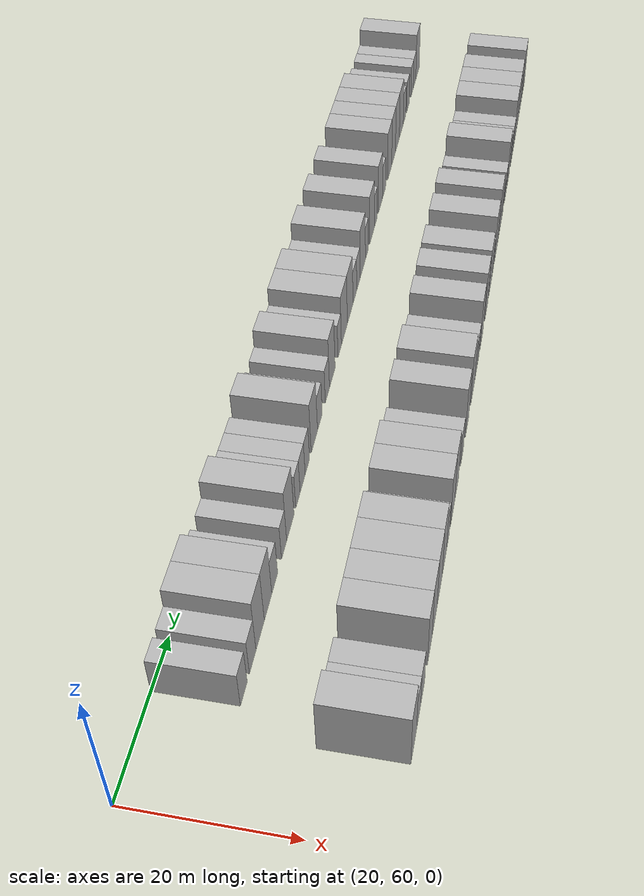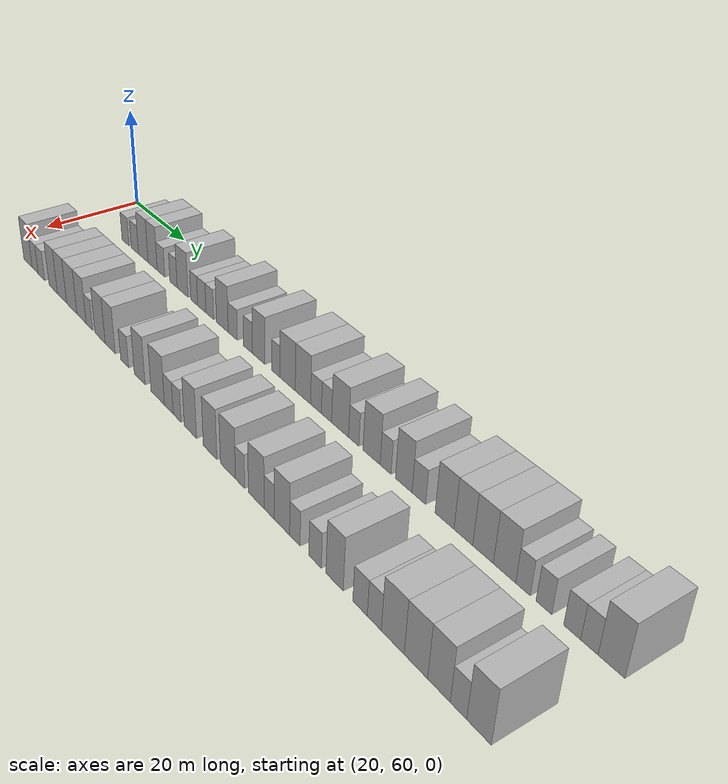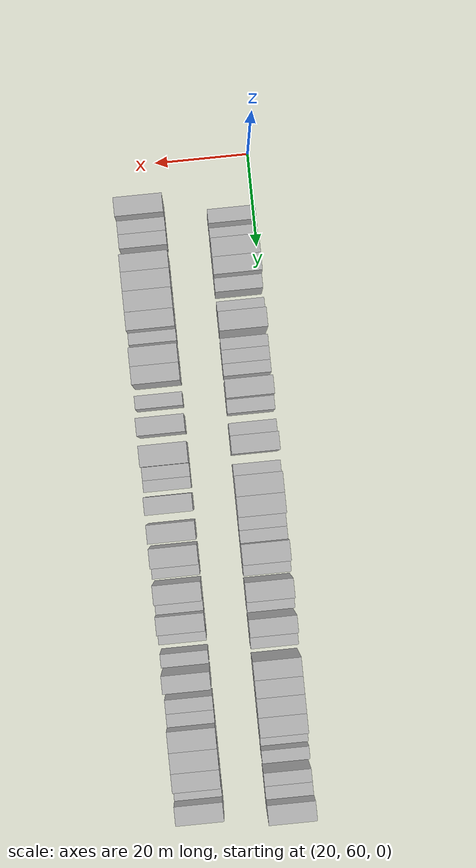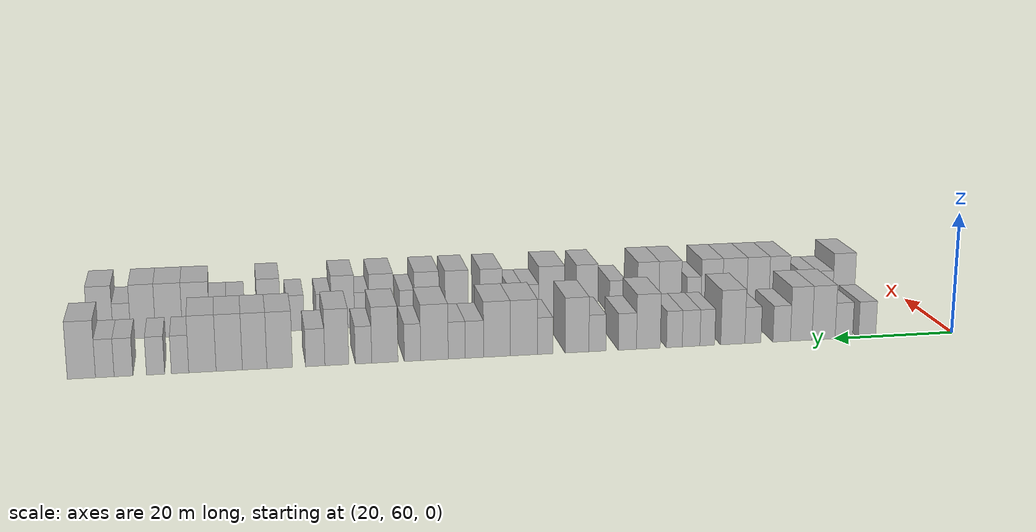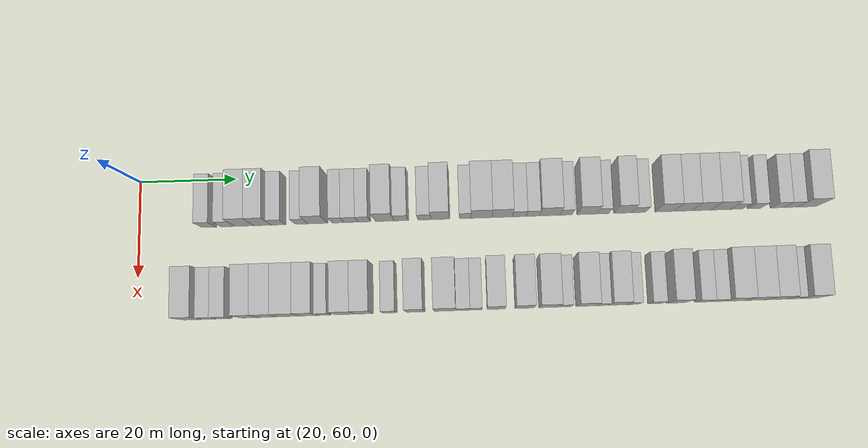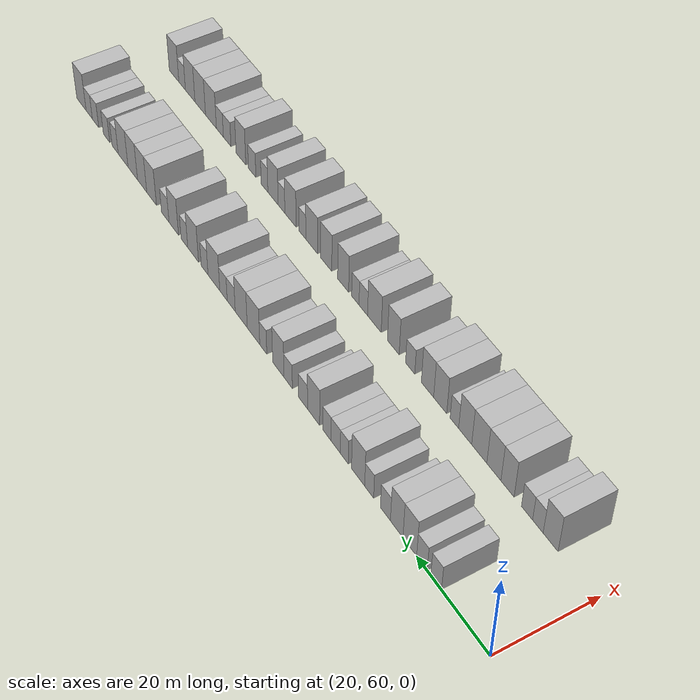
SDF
<sdf version="1.6">
 <world name="default">
  <model name="building_64">
   <static>1</static>
   <pose>25.0000 74.4920 0 0.000000 0.000000 0.000000</pose>
   <link name="link">
    <pose>0 0 3.00 0 0 0</pose>
    <collision name="collision"><geometry><box><size>10.0000 2.9386 6.0000</size></box></geometry></collision>
    <visual name="visual">
     <cast_shadows>0</cast_shadows>
     <geometry><box><size>10.0000 2.9386 6.0000</size></box></geometry>
     <material>
      <script>
       <uri>model://HANNAS_wall/materials/scripts</uri>
       <uri>model://HANNAS_wall/materials/textures</uri>
       <name>vrc/HANNAS_wall</name>
      </script>
     </material>
    </visual>
   </link>
  </model>
  <model name="building_65">
   <static>1</static>
   <pose>25.0000 78.4358 0 0.000000 0.000000 0.000000</pose>
   <link name="link">
    <pose>0 0 3.00 0 0 0</pose>
    <collision name="collision"><geometry><box><size>10.0000 2.9492 6.0000</size></box></geometry></collision>
    <visual name="visual">
     <cast_shadows>0</cast_shadows>
     <geometry><box><size>10.0000 2.9492 6.0000</size></box></geometry>
     <material>
      <script>
       <uri>model://HANNAS_wall/materials/scripts</uri>
       <uri>model://HANNAS_wall/materials/textures</uri>
       <name>vrc/HANNAS_wall</name>
      </script>
     </material>
    </visual>
   </link>
  </model>
  <model name="building_66">
   <static>1</static>
   <pose>25.0000 81.8568 0 0.000000 0.000000 0.000000</pose>
   <link name="link">
    <pose>0 0 4.50 0 0 0</pose>
    <collision name="collision"><geometry><box><size>10.0000 3.8927 9.0000</size></box></geometry></collision>
    <visual name="visual">
     <cast_shadows>0</cast_shadows>
     <geometry><box><size>10.0000 3.8927 9.0000</size></box></geometry>
     <material>
      <script>
       <uri>model://HANNAS_wall/materials/scripts</uri>
       <uri>model://HANNAS_wall/materials/textures</uri>
       <name>vrc/HANNAS_wall</name>
      </script>
     </material>
    </visual>
   </link>
  </model>
  <model name="building_67">
   <static>1</static>
   <pose>25.0000 85.6114 0 0.000000 0.000000 0.000000</pose>
   <link name="link">
    <pose>0 0 4.50 0 0 0</pose>
    <collision name="collision"><geometry><box><size>10.0000 3.6166 9.0000</size></box></geometry></collision>
    <visual name="visual">
     <cast_shadows>0</cast_shadows>
     <geometry><box><size>10.0000 3.6166 9.0000</size></box></geometry>
     <material>
      <script>
       <uri>model://HANNAS_wall/materials/scripts</uri>
       <uri>model://HANNAS_wall/materials/textures</uri>
       <name>vrc/HANNAS_wall</name>
      </script>
     </material>
    </visual>
   </link>
  </model>
  <model name="building_68">
   <static>1</static>
   <pose>25.0000 88.8825 0 0.000000 0.000000 0.000000</pose>
   <link name="link">
    <pose>0 0 3.00 0 0 0</pose>
    <collision name="collision"><geometry><box><size>10.0000 2.9257 6.0000</size></box></geometry></collision>
    <visual name="visual">
     <cast_shadows>0</cast_shadows>
     <geometry><box><size>10.0000 2.9257 6.0000</size></box></geometry>
     <material>
      <script>
       <uri>model://HANNAS_wall/materials/scripts</uri>
       <uri>model://HANNAS_wall/materials/textures</uri>
       <name>vrc/HANNAS_wall</name>
      </script>
     </material>
    </visual>
   </link>
  </model>
  <model name="building_69">
   <static>1</static>
   <pose>25.0000 93.6803 0 0.000000 0.000000 0.000000</pose>
   <link name="link">
    <pose>0 0 3.00 0 0 0</pose>
    <collision name="collision"><geometry><box><size>10.0000 2.6698 6.0000</size></box></geometry></collision>
    <visual name="visual">
     <cast_shadows>0</cast_shadows>
     <geometry><box><size>10.0000 2.6698 6.0000</size></box></geometry>
     <material>
      <script>
       <uri>model://HANNAS_wall/materials/scripts</uri>
       <uri>model://HANNAS_wall/materials/textures</uri>
       <name>vrc/HANNAS_wall</name>
      </script>
     </material>
    </visual>
   </link>
  </model>
  <model name="building_70">
   <static>1</static>
   <pose>25.0000 97.0109 0 0.000000 0.000000 0.000000</pose>
   <link name="link">
    <pose>0 0 4.50 0 0 0</pose>
    <collision name="collision"><geometry><box><size>10.0000 3.9914 9.0000</size></box></geometry></collision>
    <visual name="visual">
     <cast_shadows>0</cast_shadows>
     <geometry><box><size>10.0000 3.9914 9.0000</size></box></geometry>
     <material>
      <script>
       <uri>model://HANNAS_wall/materials/scripts</uri>
       <uri>model://HANNAS_wall/materials/textures</uri>
       <name>vrc/HANNAS_wall</name>
      </script>
     </material>
    </visual>
   </link>
  </model>
  <model name="building_71">
   <static>1</static>
   <pose>25.0000 101.2256 0 0.000000 0.000000 0.000000</pose>
   <link name="link">
    <pose>0 0 3.00 0 0 0</pose>
    <collision name="collision"><geometry><box><size>10.0000 2.4382 6.0000</size></box></geometry></collision>
    <visual name="visual">
     <cast_shadows>0</cast_shadows>
     <geometry><box><size>10.0000 2.4382 6.0000</size></box></geometry>
     <material>
      <script>
       <uri>model://HANNAS_wall/materials/scripts</uri>
       <uri>model://HANNAS_wall/materials/textures</uri>
       <name>vrc/HANNAS_wall</name>
      </script>
     </material>
    </visual>
   </link>
  </model>
  <model name="building_72">
   <static>1</static>
   <pose>25.0000 103.8931 0 0.000000 0.000000 0.000000</pose>
   <link name="link">
    <pose>0 0 3.00 0 0 0</pose>
    <collision name="collision"><geometry><box><size>10.0000 2.8968 6.0000</size></box></geometry></collision>
    <visual name="visual">
     <cast_shadows>0</cast_shadows>
     <geometry><box><size>10.0000 2.8968 6.0000</size></box></geometry>
     <material>
      <script>
       <uri>model://HANNAS_wall/materials/scripts</uri>
       <uri>model://HANNAS_wall/materials/textures</uri>
       <name>vrc/HANNAS_wall</name>
      </script>
     </material>
    </visual>
   </link>
  </model>
  <model name="building_73">
   <static>1</static>
   <pose>25.0000 106.6384 0 0.000000 0.000000 0.000000</pose>
   <link name="link">
    <pose>0 0 3.00 0 0 0</pose>
    <collision name="collision"><geometry><box><size>10.0000 2.5937 6.0000</size></box></geometry></collision>
    <visual name="visual">
     <cast_shadows>0</cast_shadows>
     <geometry><box><size>10.0000 2.5937 6.0000</size></box></geometry>
     <material>
      <script>
       <uri>model://HANNAS_wall/materials/scripts</uri>
       <uri>model://HANNAS_wall/materials/textures</uri>
       <name>vrc/HANNAS_wall</name>
      </script>
     </material>
    </visual>
   </link>
  </model>
  <model name="building_74">
   <static>1</static>
   <pose>25.0000 110.8752 0 0.000000 0.000000 0.000000</pose>
   <link name="link">
    <pose>0 0 4.50 0 0 0</pose>
    <collision name="collision"><geometry><box><size>10.0000 3.8799 9.0000</size></box></geometry></collision>
    <visual name="visual">
     <cast_shadows>0</cast_shadows>
     <geometry><box><size>10.0000 3.8799 9.0000</size></box></geometry>
     <material>
      <script>
       <uri>model://HANNAS_wall/materials/scripts</uri>
       <uri>model://HANNAS_wall/materials/textures</uri>
       <name>vrc/HANNAS_wall</name>
      </script>
     </material>
    </visual>
   </link>
  </model>
  <model name="building_75">
   <static>1</static>
   <pose>25.0000 114.2892 0 0.000000 0.000000 0.000000</pose>
   <link name="link">
    <pose>0 0 3.00 0 0 0</pose>
    <collision name="collision"><geometry><box><size>10.0000 2.9481 6.0000</size></box></geometry></collision>
    <visual name="visual">
     <cast_shadows>0</cast_shadows>
     <geometry><box><size>10.0000 2.9481 6.0000</size></box></geometry>
     <material>
      <script>
       <uri>model://HANNAS_wall/materials/scripts</uri>
       <uri>model://HANNAS_wall/materials/textures</uri>
       <name>vrc/HANNAS_wall</name>
      </script>
     </material>
    </visual>
   </link>
  </model>
  <model name="building_76">
   <static>1</static>
   <pose>25.0000 119.1432 0 0.000000 0.000000 0.000000</pose>
   <link name="link">
    <pose>0 0 3.00 0 0 0</pose>
    <collision name="collision"><geometry><box><size>10.0000 2.7599 6.0000</size></box></geometry></collision>
    <visual name="visual">
     <cast_shadows>0</cast_shadows>
     <geometry><box><size>10.0000 2.7599 6.0000</size></box></geometry>
     <material>
      <script>
       <uri>model://HANNAS_wall/materials/scripts</uri>
       <uri>model://HANNAS_wall/materials/textures</uri>
       <name>vrc/HANNAS_wall</name>
      </script>
     </material>
    </visual>
   </link>
  </model>
  <model name="building_77">
   <static>1</static>
   <pose>25.0000 122.4246 0 0.000000 0.000000 0.000000</pose>
   <link name="link">
    <pose>0 0 4.50 0 0 0</pose>
    <collision name="collision"><geometry><box><size>10.0000 3.8030 9.0000</size></box></geometry></collision>
    <visual name="visual">
     <cast_shadows>0</cast_shadows>
     <geometry><box><size>10.0000 3.8030 9.0000</size></box></geometry>
     <material>
      <script>
       <uri>model://HANNAS_wall/materials/scripts</uri>
       <uri>model://HANNAS_wall/materials/textures</uri>
       <name>vrc/HANNAS_wall</name>
      </script>
     </material>
    </visual>
   </link>
  </model>
  <model name="building_78">
   <static>1</static>
   <pose>25.0000 127.5338 0 0.000000 0.000000 0.000000</pose>
   <link name="link">
    <pose>0 0 3.00 0 0 0</pose>
    <collision name="collision"><geometry><box><size>10.0000 2.4152 6.0000</size></box></geometry></collision>
    <visual name="visual">
     <cast_shadows>0</cast_shadows>
     <geometry><box><size>10.0000 2.4152 6.0000</size></box></geometry>
     <material>
      <script>
       <uri>model://HANNAS_wall/materials/scripts</uri>
       <uri>model://HANNAS_wall/materials/textures</uri>
       <name>vrc/HANNAS_wall</name>
      </script>
     </material>
    </visual>
   </link>
  </model>
  <model name="building_79">
   <static>1</static>
   <pose>25.0000 130.9067 0 0.000000 0.000000 0.000000</pose>
   <link name="link">
    <pose>0 0 4.50 0 0 0</pose>
    <collision name="collision"><geometry><box><size>10.0000 4.3306 9.0000</size></box></geometry></collision>
    <visual name="visual">
     <cast_shadows>0</cast_shadows>
     <geometry><box><size>10.0000 4.3306 9.0000</size></box></geometry>
     <material>
      <script>
       <uri>model://HANNAS_wall/materials/scripts</uri>
       <uri>model://HANNAS_wall/materials/textures</uri>
       <name>vrc/HANNAS_wall</name>
      </script>
     </material>
    </visual>
   </link>
  </model>
  <model name="building_80">
   <static>1</static>
   <pose>25.0000 135.1905 0 0.000000 0.000000 0.000000</pose>
   <link name="link">
    <pose>0 0 4.50 0 0 0</pose>
    <collision name="collision"><geometry><box><size>10.0000 4.2369 9.0000</size></box></geometry></collision>
    <visual name="visual">
     <cast_shadows>0</cast_shadows>
     <geometry><box><size>10.0000 4.2369 9.0000</size></box></geometry>
     <material>
      <script>
       <uri>model://HANNAS_wall/materials/scripts</uri>
       <uri>model://HANNAS_wall/materials/textures</uri>
       <name>vrc/HANNAS_wall</name>
      </script>
     </material>
    </visual>
   </link>
  </model>
  <model name="building_81">
   <static>1</static>
   <pose>25.0000 138.7444 0 0.000000 0.000000 0.000000</pose>
   <link name="link">
    <pose>0 0 3.00 0 0 0</pose>
    <collision name="collision"><geometry><box><size>10.0000 2.8708 6.0000</size></box></geometry></collision>
    <visual name="visual">
     <cast_shadows>0</cast_shadows>
     <geometry><box><size>10.0000 2.8708 6.0000</size></box></geometry>
     <material>
      <script>
       <uri>model://HANNAS_wall/materials/scripts</uri>
       <uri>model://HANNAS_wall/materials/textures</uri>
       <name>vrc/HANNAS_wall</name>
      </script>
     </material>
    </visual>
   </link>
  </model>
  <model name="building_82">
   <static>1</static>
   <pose>25.0000 141.5231 0 0.000000 0.000000 0.000000</pose>
   <link name="link">
    <pose>0 0 3.00 0 0 0</pose>
    <collision name="collision"><geometry><box><size>10.0000 2.6867 6.0000</size></box></geometry></collision>
    <visual name="visual">
     <cast_shadows>0</cast_shadows>
     <geometry><box><size>10.0000 2.6867 6.0000</size></box></geometry>
     <material>
      <script>
       <uri>model://HANNAS_wall/materials/scripts</uri>
       <uri>model://HANNAS_wall/materials/textures</uri>
       <name>vrc/HANNAS_wall</name>
      </script>
     </material>
    </visual>
   </link>
  </model>
  <model name="building_83">
   <static>1</static>
   <pose>25.0000 145.0186 0 0.000000 0.000000 0.000000</pose>
   <link name="link">
    <pose>0 0 4.50 0 0 0</pose>
    <collision name="collision"><geometry><box><size>10.0000 4.3043 9.0000</size></box></geometry></collision>
    <visual name="visual">
     <cast_shadows>0</cast_shadows>
     <geometry><box><size>10.0000 4.3043 9.0000</size></box></geometry>
     <material>
      <script>
       <uri>model://HANNAS_wall/materials/scripts</uri>
       <uri>model://HANNAS_wall/materials/textures</uri>
       <name>vrc/HANNAS_wall</name>
      </script>
     </material>
    </visual>
   </link>
  </model>
  <model name="building_84">
   <static>1</static>
   <pose>25.0000 148.4384 0 0.000000 0.000000 0.000000</pose>
   <link name="link">
    <pose>0 0 3.00 0 0 0</pose>
    <collision name="collision"><geometry><box><size>10.0000 2.5353 6.0000</size></box></geometry></collision>
    <visual name="visual">
     <cast_shadows>0</cast_shadows>
     <geometry><box><size>10.0000 2.5353 6.0000</size></box></geometry>
     <material>
      <script>
       <uri>model://HANNAS_wall/materials/scripts</uri>
       <uri>model://HANNAS_wall/materials/textures</uri>
       <name>vrc/HANNAS_wall</name>
      </script>
     </material>
    </visual>
   </link>
  </model>
  <model name="building_85">
   <static>1</static>
   <pose>25.0000 152.7385 0 0.000000 0.000000 0.000000</pose>
   <link name="link">
    <pose>0 0 4.50 0 0 0</pose>
    <collision name="collision"><geometry><box><size>10.0000 4.0648 9.0000</size></box></geometry></collision>
    <visual name="visual">
     <cast_shadows>0</cast_shadows>
     <geometry><box><size>10.0000 4.0648 9.0000</size></box></geometry>
     <material>
      <script>
       <uri>model://HANNAS_wall/materials/scripts</uri>
       <uri>model://HANNAS_wall/materials/textures</uri>
       <name>vrc/HANNAS_wall</name>
      </script>
     </material>
    </visual>
   </link>
  </model>
  <model name="building_86">
   <static>1</static>
   <pose>25.0000 156.0383 0 0.000000 0.000000 0.000000</pose>
   <link name="link">
    <pose>0 0 3.00 0 0 0</pose>
    <collision name="collision"><geometry><box><size>10.0000 2.5349 6.0000</size></box></geometry></collision>
    <visual name="visual">
     <cast_shadows>0</cast_shadows>
     <geometry><box><size>10.0000 2.5349 6.0000</size></box></geometry>
     <material>
      <script>
       <uri>model://HANNAS_wall/materials/scripts</uri>
       <uri>model://HANNAS_wall/materials/textures</uri>
       <name>vrc/HANNAS_wall</name>
      </script>
     </material>
    </visual>
   </link>
  </model>
  <model name="building_87">
   <static>1</static>
   <pose>25.0000 160.1442 0 0.000000 0.000000 0.000000</pose>
   <link name="link">
    <pose>0 0 4.50 0 0 0</pose>
    <collision name="collision"><geometry><box><size>10.0000 3.6767 9.0000</size></box></geometry></collision>
    <visual name="visual">
     <cast_shadows>0</cast_shadows>
     <geometry><box><size>10.0000 3.6767 9.0000</size></box></geometry>
     <material>
      <script>
       <uri>model://HANNAS_wall/materials/scripts</uri>
       <uri>model://HANNAS_wall/materials/textures</uri>
       <name>vrc/HANNAS_wall</name>
      </script>
     </material>
    </visual>
   </link>
  </model>
  <model name="building_88">
   <static>1</static>
   <pose>25.0000 163.4572 0 0.000000 0.000000 0.000000</pose>
   <link name="link">
    <pose>0 0 3.00 0 0 0</pose>
    <collision name="collision"><geometry><box><size>10.0000 2.9494 6.0000</size></box></geometry></collision>
    <visual name="visual">
     <cast_shadows>0</cast_shadows>
     <geometry><box><size>10.0000 2.9494 6.0000</size></box></geometry>
     <material>
      <script>
       <uri>model://HANNAS_wall/materials/scripts</uri>
       <uri>model://HANNAS_wall/materials/textures</uri>
       <name>vrc/HANNAS_wall</name>
      </script>
     </material>
    </visual>
   </link>
  </model>
  <model name="building_89">
   <static>1</static>
   <pose>25.0000 168.8785 0 0.000000 0.000000 0.000000</pose>
   <link name="link">
    <pose>0 0 4.50 0 0 0</pose>
    <collision name="collision"><geometry><box><size>10.0000 3.8932 9.0000</size></box></geometry></collision>
    <visual name="visual">
     <cast_shadows>0</cast_shadows>
     <geometry><box><size>10.0000 3.8932 9.0000</size></box></geometry>
     <material>
      <script>
       <uri>model://HANNAS_wall/materials/scripts</uri>
       <uri>model://HANNAS_wall/materials/textures</uri>
       <name>vrc/HANNAS_wall</name>
      </script>
     </material>
    </visual>
   </link>
  </model>
  <model name="building_90">
   <static>1</static>
   <pose>25.0000 172.6817 0 0.000000 0.000000 0.000000</pose>
   <link name="link">
    <pose>0 0 4.50 0 0 0</pose>
    <collision name="collision"><geometry><box><size>10.0000 3.7132 9.0000</size></box></geometry></collision>
    <visual name="visual">
     <cast_shadows>0</cast_shadows>
     <geometry><box><size>10.0000 3.7132 9.0000</size></box></geometry>
     <material>
      <script>
       <uri>model://HANNAS_wall/materials/scripts</uri>
       <uri>model://HANNAS_wall/materials/textures</uri>
       <name>vrc/HANNAS_wall</name>
      </script>
     </material>
    </visual>
   </link>
  </model>
  <model name="building_91">
   <static>1</static>
   <pose>25.0000 176.5142 0 0.000000 0.000000 0.000000</pose>
   <link name="link">
    <pose>0 0 4.50 0 0 0</pose>
    <collision name="collision"><geometry><box><size>10.0000 3.9517 9.0000</size></box></geometry></collision>
    <visual name="visual">
     <cast_shadows>0</cast_shadows>
     <geometry><box><size>10.0000 3.9517 9.0000</size></box></geometry>
     <material>
      <script>
       <uri>model://HANNAS_wall/materials/scripts</uri>
       <uri>model://HANNAS_wall/materials/textures</uri>
       <name>vrc/HANNAS_wall</name>
      </script>
     </material>
    </visual>
   </link>
  </model>
  <model name="building_92">
   <static>1</static>
   <pose>25.0000 180.5401 0 0.000000 0.000000 0.000000</pose>
   <link name="link">
    <pose>0 0 4.50 0 0 0</pose>
    <collision name="collision"><geometry><box><size>10.0000 4.1001 9.0000</size></box></geometry></collision>
    <visual name="visual">
     <cast_shadows>0</cast_shadows>
     <geometry><box><size>10.0000 4.1001 9.0000</size></box></geometry>
     <material>
      <script>
       <uri>model://HANNAS_wall/materials/scripts</uri>
       <uri>model://HANNAS_wall/materials/textures</uri>
       <name>vrc/HANNAS_wall</name>
      </script>
     </material>
    </visual>
   </link>
  </model>
  <model name="building_93">
   <static>1</static>
   <pose>25.0000 183.8893 0 0.000000 0.000000 0.000000</pose>
   <link name="link">
    <pose>0 0 3.00 0 0 0</pose>
    <collision name="collision"><geometry><box><size>10.0000 2.5984 6.0000</size></box></geometry></collision>
    <visual name="visual">
     <cast_shadows>0</cast_shadows>
     <geometry><box><size>10.0000 2.5984 6.0000</size></box></geometry>
     <material>
      <script>
       <uri>model://HANNAS_wall/materials/scripts</uri>
       <uri>model://HANNAS_wall/materials/textures</uri>
       <name>vrc/HANNAS_wall</name>
      </script>
     </material>
    </visual>
   </link>
  </model>
  <model name="building_94">
   <static>1</static>
   <pose>25.0000 187.5407 0 0.000000 0.000000 0.000000</pose>
   <link name="link">
    <pose>0 0 3.00 0 0 0</pose>
    <collision name="collision"><geometry><box><size>10.0000 2.7043 6.0000</size></box></geometry></collision>
    <visual name="visual">
     <cast_shadows>0</cast_shadows>
     <geometry><box><size>10.0000 2.7043 6.0000</size></box></geometry>
     <material>
      <script>
       <uri>model://HANNAS_wall/materials/scripts</uri>
       <uri>model://HANNAS_wall/materials/textures</uri>
       <name>vrc/HANNAS_wall</name>
      </script>
     </material>
    </visual>
   </link>
  </model>
  <model name="building_95">
   <static>1</static>
   <pose>25.0000 192.2834 0 0.000000 0.000000 0.000000</pose>
   <link name="link">
    <pose>0 0 3.00 0 0 0</pose>
    <collision name="collision"><geometry><box><size>10.0000 2.7812 6.0000</size></box></geometry></collision>
    <visual name="visual">
     <cast_shadows>0</cast_shadows>
     <geometry><box><size>10.0000 2.7812 6.0000</size></box></geometry>
     <material>
      <script>
       <uri>model://HANNAS_wall/materials/scripts</uri>
       <uri>model://HANNAS_wall/materials/textures</uri>
       <name>vrc/HANNAS_wall</name>
      </script>
     </material>
    </visual>
   </link>
  </model>
  <model name="building_96">
   <static>1</static>
   <pose>25.0000 195.0467 0 0.000000 0.000000 0.000000</pose>
   <link name="link">
    <pose>0 0 3.00 0 0 0</pose>
    <collision name="collision"><geometry><box><size>10.0000 2.7455 6.0000</size></box></geometry></collision>
    <visual name="visual">
     <cast_shadows>0</cast_shadows>
     <geometry><box><size>10.0000 2.7455 6.0000</size></box></geometry>
     <material>
      <script>
       <uri>model://HANNAS_wall/materials/scripts</uri>
       <uri>model://HANNAS_wall/materials/textures</uri>
       <name>vrc/HANNAS_wall</name>
      </script>
     </material>
    </visual>
   </link>
  </model>
  <model name="building_97">
   <static>1</static>
   <pose>25.0000 198.4862 0 0.000000 0.000000 0.000000</pose>
   <link name="link">
    <pose>0 0 4.50 0 0 0</pose>
    <collision name="collision"><geometry><box><size>10.0000 4.1335 9.0000</size></box></geometry></collision>
    <visual name="visual">
     <cast_shadows>0</cast_shadows>
     <geometry><box><size>10.0000 4.1335 9.0000</size></box></geometry>
     <material>
      <script>
       <uri>model://HANNAS_wall/materials/scripts</uri>
       <uri>model://HANNAS_wall/materials/textures</uri>
       <name>vrc/HANNAS_wall</name>
      </script>
     </material>
    </visual>
   </link>
  </model>
  <model name="building_165">
   <static>1</static>
   <pose>44.0000 71.6561 0 0.000000 0.000000 0.000000</pose>
   <link name="link">
    <pose>0 0 4.50 0 0 0</pose>
    <collision name="collision"><geometry><box><size>10.0000 3.9168 9.0000</size></box></geometry></collision>
    <visual name="visual">
     <cast_shadows>0</cast_shadows>
     <geometry><box><size>10.0000 3.9168 9.0000</size></box></geometry>
     <material>
      <script>
       <uri>model://HANNAS_wall/materials/scripts</uri>
       <uri>model://HANNAS_wall/materials/textures</uri>
       <name>vrc/HANNAS_wall</name>
      </script>
     </material>
    </visual>
   </link>
  </model>
  <model name="building_166">
   <static>1</static>
   <pose>44.0000 75.0192 0 0.000000 0.000000 0.000000</pose>
   <link name="link">
    <pose>0 0 3.00 0 0 0</pose>
    <collision name="collision"><geometry><box><size>10.0000 2.8094 6.0000</size></box></geometry></collision>
    <visual name="visual">
     <cast_shadows>0</cast_shadows>
     <geometry><box><size>10.0000 2.8094 6.0000</size></box></geometry>
     <material>
      <script>
       <uri>model://HANNAS_wall/materials/scripts</uri>
       <uri>model://HANNAS_wall/materials/textures</uri>
       <name>vrc/HANNAS_wall</name>
      </script>
     </material>
    </visual>
   </link>
  </model>
  <model name="building_167">
   <static>1</static>
   <pose>44.0000 77.9192 0 0.000000 0.000000 0.000000</pose>
   <link name="link">
    <pose>0 0 3.00 0 0 0</pose>
    <collision name="collision"><geometry><box><size>10.0000 2.9907 6.0000</size></box></geometry></collision>
    <visual name="visual">
     <cast_shadows>0</cast_shadows>
     <geometry><box><size>10.0000 2.9907 6.0000</size></box></geometry>
     <material>
      <script>
       <uri>model://HANNAS_wall/materials/scripts</uri>
       <uri>model://HANNAS_wall/materials/textures</uri>
       <name>vrc/HANNAS_wall</name>
      </script>
     </material>
    </visual>
   </link>
  </model>
  <model name="building_168">
   <static>1</static>
   <pose>44.0000 83.2264 0 0.000000 0.000000 0.000000</pose>
   <link name="link">
    <pose>0 0 4.50 0 0 0</pose>
    <collision name="collision"><geometry><box><size>10.0000 3.6237 9.0000</size></box></geometry></collision>
    <visual name="visual">
     <cast_shadows>0</cast_shadows>
     <geometry><box><size>10.0000 3.6237 9.0000</size></box></geometry>
     <material>
      <script>
       <uri>model://HANNAS_wall/materials/scripts</uri>
       <uri>model://HANNAS_wall/materials/textures</uri>
       <name>vrc/HANNAS_wall</name>
      </script>
     </material>
    </visual>
   </link>
  </model>
  <model name="building_169">
   <static>1</static>
   <pose>44.0000 87.0114 0 0.000000 0.000000 0.000000</pose>
   <link name="link">
    <pose>0 0 4.50 0 0 0</pose>
    <collision name="collision"><geometry><box><size>10.0000 3.9463 9.0000</size></box></geometry></collision>
    <visual name="visual">
     <cast_shadows>0</cast_shadows>
     <geometry><box><size>10.0000 3.9463 9.0000</size></box></geometry>
     <material>
      <script>
       <uri>model://HANNAS_wall/materials/scripts</uri>
       <uri>model://HANNAS_wall/materials/textures</uri>
       <name>vrc/HANNAS_wall</name>
      </script>
     </material>
    </visual>
   </link>
  </model>
  <model name="building_170">
   <static>1</static>
   <pose>44.0000 91.1344 0 0.000000 0.000000 0.000000</pose>
   <link name="link">
    <pose>0 0 4.50 0 0 0</pose>
    <collision name="collision"><geometry><box><size>10.0000 4.2997 9.0000</size></box></geometry></collision>
    <visual name="visual">
     <cast_shadows>0</cast_shadows>
     <geometry><box><size>10.0000 4.2997 9.0000</size></box></geometry>
     <material>
      <script>
       <uri>model://HANNAS_wall/materials/scripts</uri>
       <uri>model://HANNAS_wall/materials/textures</uri>
       <name>vrc/HANNAS_wall</name>
      </script>
     </material>
    </visual>
   </link>
  </model>
  <model name="building_171">
   <static>1</static>
   <pose>44.0000 95.1660 0 0.000000 0.000000 0.000000</pose>
   <link name="link">
    <pose>0 0 4.50 0 0 0</pose>
    <collision name="collision"><geometry><box><size>10.0000 3.7634 9.0000</size></box></geometry></collision>
    <visual name="visual">
     <cast_shadows>0</cast_shadows>
     <geometry><box><size>10.0000 3.7634 9.0000</size></box></geometry>
     <material>
      <script>
       <uri>model://HANNAS_wall/materials/scripts</uri>
       <uri>model://HANNAS_wall/materials/textures</uri>
       <name>vrc/HANNAS_wall</name>
      </script>
     </material>
    </visual>
   </link>
  </model>
  <model name="building_172">
   <static>1</static>
   <pose>44.0000 98.2956 0 0.000000 0.000000 0.000000</pose>
   <link name="link">
    <pose>0 0 3.00 0 0 0</pose>
    <collision name="collision"><geometry><box><size>10.0000 2.4957 6.0000</size></box></geometry></collision>
    <visual name="visual">
     <cast_shadows>0</cast_shadows>
     <geometry><box><size>10.0000 2.4957 6.0000</size></box></geometry>
     <material>
      <script>
       <uri>model://HANNAS_wall/materials/scripts</uri>
       <uri>model://HANNAS_wall/materials/textures</uri>
       <name>vrc/HANNAS_wall</name>
      </script>
     </material>
    </visual>
   </link>
  </model>
  <model name="building_173">
   <static>1</static>
   <pose>44.0000 102.4886 0 0.000000 0.000000 0.000000</pose>
   <link name="link">
    <pose>0 0 4.50 0 0 0</pose>
    <collision name="collision"><geometry><box><size>10.0000 3.8904 9.0000</size></box></geometry></collision>
    <visual name="visual">
     <cast_shadows>0</cast_shadows>
     <geometry><box><size>10.0000 3.8904 9.0000</size></box></geometry>
     <material>
      <script>
       <uri>model://HANNAS_wall/materials/scripts</uri>
       <uri>model://HANNAS_wall/materials/textures</uri>
       <name>vrc/HANNAS_wall</name>
      </script>
     </material>
    </visual>
   </link>
  </model>
  <model name="building_174">
   <static>1</static>
   <pose>44.0000 106.3006 0 0.000000 0.000000 0.000000</pose>
   <link name="link">
    <pose>0 0 4.50 0 0 0</pose>
    <collision name="collision"><geometry><box><size>10.0000 3.7335 9.0000</size></box></geometry></collision>
    <visual name="visual">
     <cast_shadows>0</cast_shadows>
     <geometry><box><size>10.0000 3.7335 9.0000</size></box></geometry>
     <material>
      <script>
       <uri>model://HANNAS_wall/materials/scripts</uri>
       <uri>model://HANNAS_wall/materials/textures</uri>
       <name>vrc/HANNAS_wall</name>
      </script>
     </material>
    </visual>
   </link>
  </model>
  <model name="building_175">
   <static>1</static>
   <pose>44.0000 111.5860 0 0.000000 0.000000 0.000000</pose>
   <link name="link">
    <pose>0 0 3.00 0 0 0</pose>
    <collision name="collision"><geometry><box><size>10.0000 2.8373 6.0000</size></box></geometry></collision>
    <visual name="visual">
     <cast_shadows>0</cast_shadows>
     <geometry><box><size>10.0000 2.8373 6.0000</size></box></geometry>
     <material>
      <script>
       <uri>model://HANNAS_wall/materials/scripts</uri>
       <uri>model://HANNAS_wall/materials/textures</uri>
       <name>vrc/HANNAS_wall</name>
      </script>
     </material>
    </visual>
   </link>
  </model>
  <model name="building_176">
   <static>1</static>
   <pose>44.0000 116.8534 0 0.000000 0.000000 0.000000</pose>
   <link name="link">
    <pose>0 0 4.50 0 0 0</pose>
    <collision name="collision"><geometry><box><size>10.0000 3.6976 9.0000</size></box></geometry></collision>
    <visual name="visual">
     <cast_shadows>0</cast_shadows>
     <geometry><box><size>10.0000 3.6976 9.0000</size></box></geometry>
     <material>
      <script>
       <uri>model://HANNAS_wall/materials/scripts</uri>
       <uri>model://HANNAS_wall/materials/textures</uri>
       <name>vrc/HANNAS_wall</name>
      </script>
     </material>
    </visual>
   </link>
  </model>
  <model name="building_177">
   <static>1</static>
   <pose>44.0000 122.9066 0 0.000000 0.000000 0.000000</pose>
   <link name="link">
    <pose>0 0 4.50 0 0 0</pose>
    <collision name="collision"><geometry><box><size>10.0000 4.4088 9.0000</size></box></geometry></collision>
    <visual name="visual">
     <cast_shadows>0</cast_shadows>
     <geometry><box><size>10.0000 4.4088 9.0000</size></box></geometry>
     <material>
      <script>
       <uri>model://HANNAS_wall/materials/scripts</uri>
       <uri>model://HANNAS_wall/materials/textures</uri>
       <name>vrc/HANNAS_wall</name>
      </script>
     </material>
    </visual>
   </link>
  </model>
  <model name="building_178">
   <static>1</static>
   <pose>44.0000 126.5009 0 0.000000 0.000000 0.000000</pose>
   <link name="link">
    <pose>0 0 3.00 0 0 0</pose>
    <collision name="collision"><geometry><box><size>10.0000 2.7798 6.0000</size></box></geometry></collision>
    <visual name="visual">
     <cast_shadows>0</cast_shadows>
     <geometry><box><size>10.0000 2.7798 6.0000</size></box></geometry>
     <material>
      <script>
       <uri>model://HANNAS_wall/materials/scripts</uri>
       <uri>model://HANNAS_wall/materials/textures</uri>
       <name>vrc/HANNAS_wall</name>
      </script>
     </material>
    </visual>
   </link>
  </model>
  <model name="building_179">
   <static>1</static>
   <pose>44.0000 129.1104 0 0.000000 0.000000 0.000000</pose>
   <link name="link">
    <pose>0 0 3.00 0 0 0</pose>
    <collision name="collision"><geometry><box><size>10.0000 2.4392 6.0000</size></box></geometry></collision>
    <visual name="visual">
     <cast_shadows>0</cast_shadows>
     <geometry><box><size>10.0000 2.4392 6.0000</size></box></geometry>
     <material>
      <script>
       <uri>model://HANNAS_wall/materials/scripts</uri>
       <uri>model://HANNAS_wall/materials/textures</uri>
       <name>vrc/HANNAS_wall</name>
      </script>
     </material>
    </visual>
   </link>
  </model>
  <model name="building_180">
   <static>1</static>
   <pose>44.0000 133.1741 0 0.000000 0.000000 0.000000</pose>
   <link name="link">
    <pose>0 0 4.50 0 0 0</pose>
    <collision name="collision"><geometry><box><size>10.0000 3.6881 9.0000</size></box></geometry></collision>
    <visual name="visual">
     <cast_shadows>0</cast_shadows>
     <geometry><box><size>10.0000 3.6881 9.0000</size></box></geometry>
     <material>
      <script>
       <uri>model://HANNAS_wall/materials/scripts</uri>
       <uri>model://HANNAS_wall/materials/textures</uri>
       <name>vrc/HANNAS_wall</name>
      </script>
     </material>
    </visual>
   </link>
  </model>
  <model name="building_181">
   <static>1</static>
   <pose>44.0000 138.9547 0 0.000000 0.000000 0.000000</pose>
   <link name="link">
    <pose>0 0 4.50 0 0 0</pose>
    <collision name="collision"><geometry><box><size>10.0000 3.8731 9.0000</size></box></geometry></collision>
    <visual name="visual">
     <cast_shadows>0</cast_shadows>
     <geometry><box><size>10.0000 3.8731 9.0000</size></box></geometry>
     <material>
      <script>
       <uri>model://HANNAS_wall/materials/scripts</uri>
       <uri>model://HANNAS_wall/materials/textures</uri>
       <name>vrc/HANNAS_wall</name>
      </script>
     </material>
    </visual>
   </link>
  </model>
  <model name="building_182">
   <static>1</static>
   <pose>44.0000 143.9511 0 0.000000 0.000000 0.000000</pose>
   <link name="link">
    <pose>0 0 4.50 0 0 0</pose>
    <collision name="collision"><geometry><box><size>10.0000 4.1199 9.0000</size></box></geometry></collision>
    <visual name="visual">
     <cast_shadows>0</cast_shadows>
     <geometry><box><size>10.0000 4.1199 9.0000</size></box></geometry>
     <material>
      <script>
       <uri>model://HANNAS_wall/materials/scripts</uri>
       <uri>model://HANNAS_wall/materials/textures</uri>
       <name>vrc/HANNAS_wall</name>
      </script>
     </material>
    </visual>
   </link>
  </model>
  <model name="building_183">
   <static>1</static>
   <pose>44.0000 147.2331 0 0.000000 0.000000 0.000000</pose>
   <link name="link">
    <pose>0 0 3.00 0 0 0</pose>
    <collision name="collision"><geometry><box><size>10.0000 2.4441 6.0000</size></box></geometry></collision>
    <visual name="visual">
     <cast_shadows>0</cast_shadows>
     <geometry><box><size>10.0000 2.4441 6.0000</size></box></geometry>
     <material>
      <script>
       <uri>model://HANNAS_wall/materials/scripts</uri>
       <uri>model://HANNAS_wall/materials/textures</uri>
       <name>vrc/HANNAS_wall</name>
      </script>
     </material>
    </visual>
   </link>
  </model>
  <model name="building_184">
   <static>1</static>
   <pose>44.0000 151.4688 0 0.000000 0.000000 0.000000</pose>
   <link name="link">
    <pose>0 0 4.50 0 0 0</pose>
    <collision name="collision"><geometry><box><size>10.0000 4.0272 9.0000</size></box></geometry></collision>
    <visual name="visual">
     <cast_shadows>0</cast_shadows>
     <geometry><box><size>10.0000 4.0272 9.0000</size></box></geometry>
     <material>
      <script>
       <uri>model://HANNAS_wall/materials/scripts</uri>
       <uri>model://HANNAS_wall/materials/textures</uri>
       <name>vrc/HANNAS_wall</name>
      </script>
     </material>
    </visual>
   </link>
  </model>
  <model name="building_185">
   <static>1</static>
   <pose>44.0000 154.7045 0 0.000000 0.000000 0.000000</pose>
   <link name="link">
    <pose>0 0 3.00 0 0 0</pose>
    <collision name="collision"><geometry><box><size>10.0000 2.4442 6.0000</size></box></geometry></collision>
    <visual name="visual">
     <cast_shadows>0</cast_shadows>
     <geometry><box><size>10.0000 2.4442 6.0000</size></box></geometry>
     <material>
      <script>
       <uri>model://HANNAS_wall/materials/scripts</uri>
       <uri>model://HANNAS_wall/materials/textures</uri>
       <name>vrc/HANNAS_wall</name>
      </script>
     </material>
    </visual>
   </link>
  </model>
  <model name="building_186">
   <static>1</static>
   <pose>44.0000 157.8166 0 0.000000 0.000000 0.000000</pose>
   <link name="link">
    <pose>0 0 4.50 0 0 0</pose>
    <collision name="collision"><geometry><box><size>10.0000 3.7799 9.0000</size></box></geometry></collision>
    <visual name="visual">
     <cast_shadows>0</cast_shadows>
     <geometry><box><size>10.0000 3.7799 9.0000</size></box></geometry>
     <material>
      <script>
       <uri>model://HANNAS_wall/materials/scripts</uri>
       <uri>model://HANNAS_wall/materials/textures</uri>
       <name>vrc/HANNAS_wall</name>
      </script>
     </material>
    </visual>
   </link>
  </model>
  <model name="building_187">
   <static>1</static>
   <pose>44.0000 160.9439 0 0.000000 0.000000 0.000000</pose>
   <link name="link">
    <pose>0 0 3.00 0 0 0</pose>
    <collision name="collision"><geometry><box><size>10.0000 2.4748 6.0000</size></box></geometry></collision>
    <visual name="visual">
     <cast_shadows>0</cast_shadows>
     <geometry><box><size>10.0000 2.4748 6.0000</size></box></geometry>
     <material>
      <script>
       <uri>model://HANNAS_wall/materials/scripts</uri>
       <uri>model://HANNAS_wall/materials/textures</uri>
       <name>vrc/HANNAS_wall</name>
      </script>
     </material>
    </visual>
   </link>
  </model>
  <model name="building_188">
   <static>1</static>
   <pose>44.0000 165.5924 0 0.000000 0.000000 0.000000</pose>
   <link name="link">
    <pose>0 0 3.00 0 0 0</pose>
    <collision name="collision"><geometry><box><size>10.0000 2.8223 6.0000</size></box></geometry></collision>
    <visual name="visual">
     <cast_shadows>0</cast_shadows>
     <geometry><box><size>10.0000 2.8223 6.0000</size></box></geometry>
     <material>
      <script>
       <uri>model://HANNAS_wall/materials/scripts</uri>
       <uri>model://HANNAS_wall/materials/textures</uri>
       <name>vrc/HANNAS_wall</name>
      </script>
     </material>
    </visual>
   </link>
  </model>
  <model name="building_189">
   <static>1</static>
   <pose>44.0000 169.8700 0 0.000000 0.000000 0.000000</pose>
   <link name="link">
    <pose>0 0 4.50 0 0 0</pose>
    <collision name="collision"><geometry><box><size>10.0000 3.7329 9.0000</size></box></geometry></collision>
    <visual name="visual">
     <cast_shadows>0</cast_shadows>
     <geometry><box><size>10.0000 3.7329 9.0000</size></box></geometry>
     <material>
      <script>
       <uri>model://HANNAS_wall/materials/scripts</uri>
       <uri>model://HANNAS_wall/materials/textures</uri>
       <name>vrc/HANNAS_wall</name>
      </script>
     </material>
    </visual>
   </link>
  </model>
  <model name="building_190">
   <static>1</static>
   <pose>44.0000 175.2124 0 0.000000 0.000000 0.000000</pose>
   <link name="link">
    <pose>0 0 3.00 0 0 0</pose>
    <collision name="collision"><geometry><box><size>10.0000 2.9520 6.0000</size></box></geometry></collision>
    <visual name="visual">
     <cast_shadows>0</cast_shadows>
     <geometry><box><size>10.0000 2.9520 6.0000</size></box></geometry>
     <material>
      <script>
       <uri>model://HANNAS_wall/materials/scripts</uri>
       <uri>model://HANNAS_wall/materials/textures</uri>
       <name>vrc/HANNAS_wall</name>
      </script>
     </material>
    </visual>
   </link>
  </model>
  <model name="building_191">
   <static>1</static>
   <pose>44.0000 178.0741 0 0.000000 0.000000 0.000000</pose>
   <link name="link">
    <pose>0 0 3.00 0 0 0</pose>
    <collision name="collision"><geometry><box><size>10.0000 2.7713 6.0000</size></box></geometry></collision>
    <visual name="visual">
     <cast_shadows>0</cast_shadows>
     <geometry><box><size>10.0000 2.7713 6.0000</size></box></geometry>
     <material>
      <script>
       <uri>model://HANNAS_wall/materials/scripts</uri>
       <uri>model://HANNAS_wall/materials/textures</uri>
       <name>vrc/HANNAS_wall</name>
      </script>
     </material>
    </visual>
   </link>
  </model>
  <model name="building_192">
   <static>1</static>
   <pose>44.0000 181.6452 0 0.000000 0.000000 0.000000</pose>
   <link name="link">
    <pose>0 0 4.50 0 0 0</pose>
    <collision name="collision"><geometry><box><size>10.0000 4.3710 9.0000</size></box></geometry></collision>
    <visual name="visual">
     <cast_shadows>0</cast_shadows>
     <geometry><box><size>10.0000 4.3710 9.0000</size></box></geometry>
     <material>
      <script>
       <uri>model://HANNAS_wall/materials/scripts</uri>
       <uri>model://HANNAS_wall/materials/textures</uri>
       <name>vrc/HANNAS_wall</name>
      </script>
     </material>
    </visual>
   </link>
  </model>
  <model name="building_193">
   <static>1</static>
   <pose>44.0000 185.9717 0 0.000000 0.000000 0.000000</pose>
   <link name="link">
    <pose>0 0 4.50 0 0 0</pose>
    <collision name="collision"><geometry><box><size>10.0000 4.2820 9.0000</size></box></geometry></collision>
    <visual name="visual">
     <cast_shadows>0</cast_shadows>
     <geometry><box><size>10.0000 4.2820 9.0000</size></box></geometry>
     <material>
      <script>
       <uri>model://HANNAS_wall/materials/scripts</uri>
       <uri>model://HANNAS_wall/materials/textures</uri>
       <name>vrc/HANNAS_wall</name>
      </script>
     </material>
    </visual>
   </link>
  </model>
  <model name="building_194">
   <static>1</static>
   <pose>44.0000 190.0821 0 0.000000 0.000000 0.000000</pose>
   <link name="link">
    <pose>0 0 4.50 0 0 0</pose>
    <collision name="collision"><geometry><box><size>10.0000 3.9389 9.0000</size></box></geometry></collision>
    <visual name="visual">
     <cast_shadows>0</cast_shadows>
     <geometry><box><size>10.0000 3.9389 9.0000</size></box></geometry>
     <material>
      <script>
       <uri>model://HANNAS_wall/materials/scripts</uri>
       <uri>model://HANNAS_wall/materials/textures</uri>
       <name>vrc/HANNAS_wall</name>
      </script>
     </material>
    </visual>
   </link>
  </model>
  <model name="building_195">
   <static>1</static>
   <pose>44.0000 193.4297 0 0.000000 0.000000 0.000000</pose>
   <link name="link">
    <pose>0 0 3.00 0 0 0</pose>
    <collision name="collision"><geometry><box><size>10.0000 2.7563 6.0000</size></box></geometry></collision>
    <visual name="visual">
     <cast_shadows>0</cast_shadows>
     <geometry><box><size>10.0000 2.7563 6.0000</size></box></geometry>
     <material>
      <script>
       <uri>model://HANNAS_wall/materials/scripts</uri>
       <uri>model://HANNAS_wall/materials/textures</uri>
       <name>vrc/HANNAS_wall</name>
      </script>
     </material>
    </visual>
   </link>
  </model>
  <model name="building_196">
   <static>1</static>
   <pose>44.0000 196.8062 0 0.000000 0.000000 0.000000</pose>
   <link name="link">
    <pose>0 0 4.50 0 0 0</pose>
    <collision name="collision"><geometry><box><size>10.0000 3.9968 9.0000</size></box></geometry></collision>
    <visual name="visual">
     <cast_shadows>0</cast_shadows>
     <geometry><box><size>10.0000 3.9968 9.0000</size></box></geometry>
     <material>
      <script>
       <uri>model://HANNAS_wall/materials/scripts</uri>
       <uri>model://HANNAS_wall/materials/textures</uri>
       <name>vrc/HANNAS_wall</name>
      </script>
     </material>
    </visual>
   </link>
  </model>
 </world>
</sdf>
